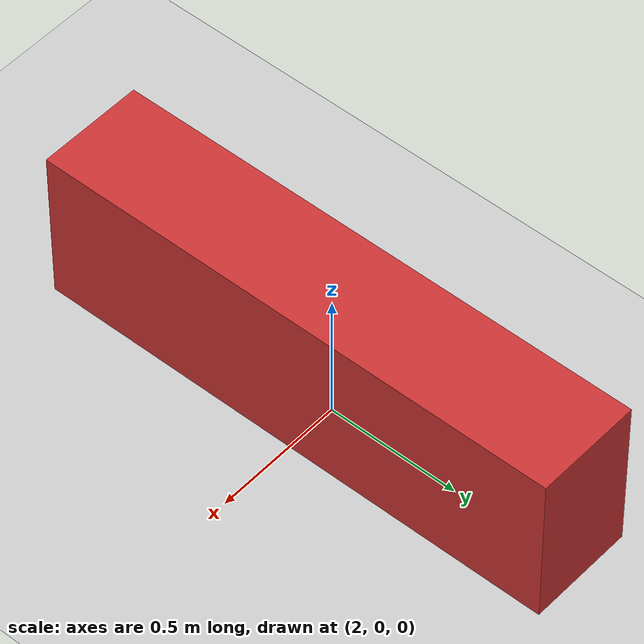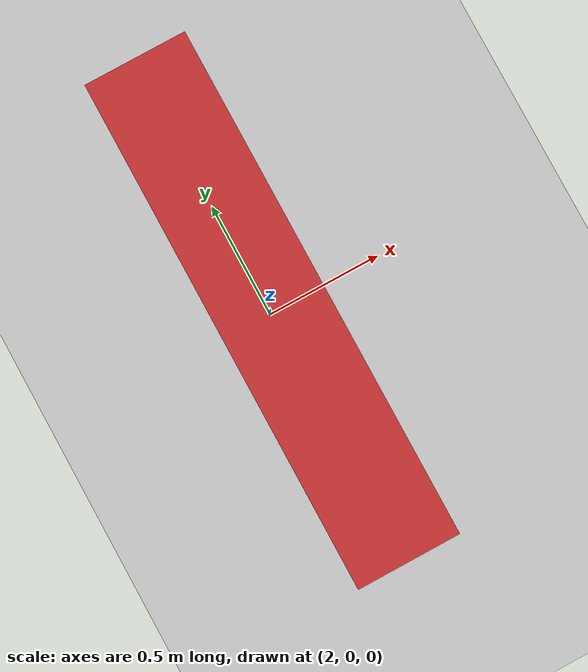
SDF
<?xml version="1.0" ?>
<sdf version="1.10">
  <world name="empty_world">
    <physics name="1ms" type="ignored">
      <max_step_size>0.001</max_step_size>
      <real_time_factor>1.0</real_time_factor>
    </physics>

    <plugin filename="gz-sim-physics-system" name="gz::sim::systems::Physics"/>
    <plugin filename="gz-sim-user-commands-system" name="gz::sim::systems::UserCommands"/>
    <plugin filename="gz-sim-scene-broadcaster-system" name="gz::sim::systems::SceneBroadcaster"/>
    <plugin filename="gz-sim-contact-system" name="gz::sim::systems::Contact"/>

    <light type="directional" name="sun">
      <cast_shadows>true</cast_shadows>
      <pose>0 0 10 0 0 0</pose>
      <diffuse>0.8 0.8 0.8 1</diffuse>
      <specular>0.2 0.2 0.2 1</specular>
      <attenuation>
        <range>1000</range>
        <constant>0.9</constant>
        <linear>0.01</linear>
        <quadratic>0.001</quadratic>
      </attenuation>
      <direction>-0.5 0.1 -0.9</direction>
    </light>

    <model name="ground_plane">
      <static>true</static>
      <link name="link">
        <collision name="collision">
          <geometry>
            <plane>
              <normal>0 0 1</normal>
              <size>100 100</size>
            </plane>
          </geometry>
        </collision>
        <visual name="visual">
          <geometry>
            <plane>
              <normal>0 0 1</normal>
              <size>100 100</size>
            </plane>
          </geometry>
          <material>
            <ambient>0.8 0.8 0.8 1</ambient>
            <diffuse>0.8 0.8 0.8 1</diffuse>
            <specular>0.8 0.8 0.8 1</specular>
          </material>
        </visual>
      </link>
    </model>

    <model name="obstacle_box">
      <static>true</static>
      <pose>2.0 0 0.3 0 0 0</pose>
      <link name="link">
        <collision name="collision">
          <geometry>
            <box>
              <size>0.4 2.0 0.6</size>
            </box>
          </geometry>
        </collision>
        <visual name="visual">
          <geometry>
            <box>
              <size>0.4 2.0 0.6</size>
            </box>
          </geometry>
          <material>
            <ambient>0.8 0.2 0.2 1</ambient>
            <diffuse>0.8 0.2 0.2 1</diffuse>
            <specular>0.2 0.2 0.2 1</specular>
          </material>
        </visual>
      </link>
    </model>
  </world>
</sdf>
